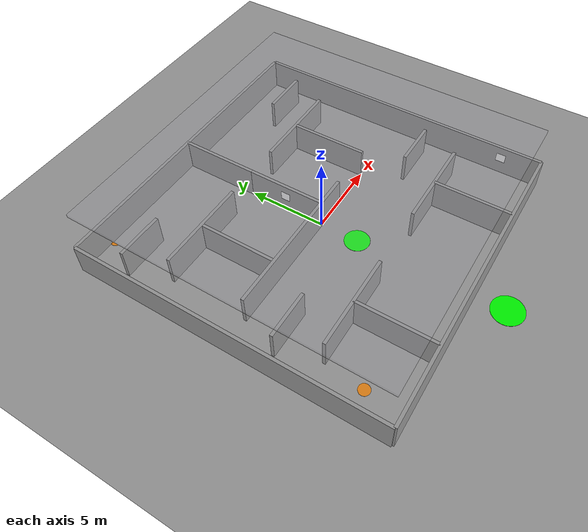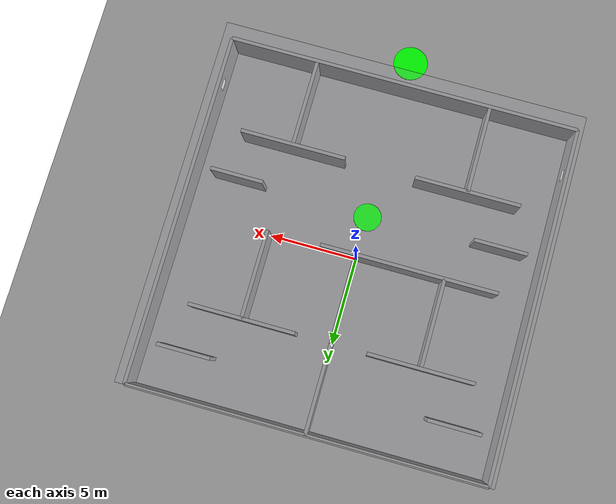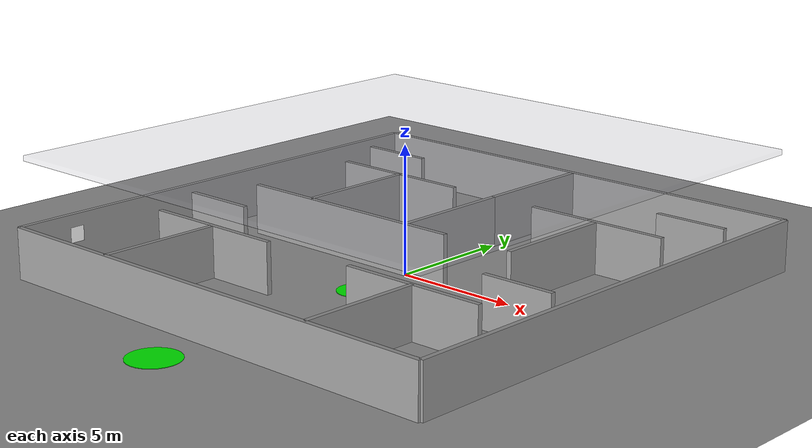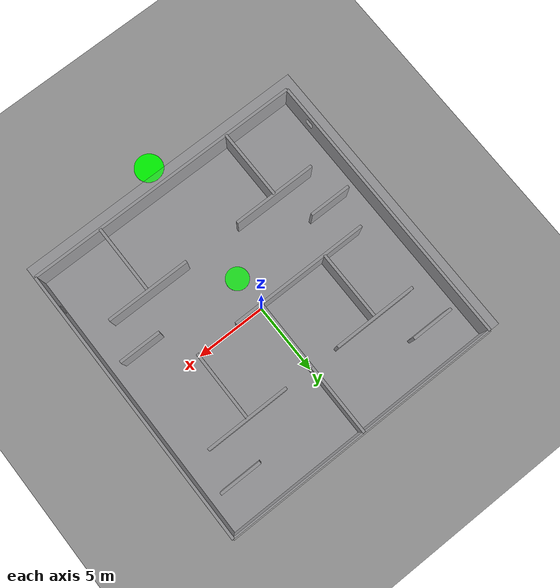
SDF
<?xml version="1.0"?>
<sdf version="1.8">
  <world name="maze">

    <physics type="ode">
      <max_step_size>0.004</max_step_size>
      <real_time_factor>1.0</real_time_factor>
      <real_time_update_rate>250</real_time_update_rate>
    </physics>

    <plugin filename="gz-sim-air-pressure-system" name="gz::sim::systems::AirPressure"/>
    <plugin filename="gz-sim-magnetometer-system" name="gz::sim::systems::Magnetometer"/>
    <plugin filename="gz-sim-physics-system" name="gz::sim::systems::Physics"/>
    <plugin filename="gz-sim-user-commands-system" name="gz::sim::systems::UserCommands"/>
    <plugin filename="gz-sim-scene-broadcaster-system" name="gz::sim::systems::SceneBroadcaster"/>
    <plugin filename="gz-sim-sensors-system" name="gz::sim::systems::Sensors">
      <render_engine>ogre2</render_engine>
    </plugin>
    <plugin filename="gz-sim-imu-system" name="gz::sim::systems::Imu"/>
    <plugin filename="gz-sim-navsat-system" name="gz::sim::systems::NavSat"/>
    <plugin filename="gz-sim-contact-system" name="gz::sim::systems::Contact"/>

    <spherical_coordinates>
  	<surface_model>EARTH_WGS84</surface_model>
  	<world_frame_orientation>ENU</world_frame_orientation>
  	<latitude_deg>40.8518</latitude_deg>  <longitude_deg>14.2681</longitude_deg>
  	<elevation>0</elevation>
  	<heading_deg>0</heading_deg>
    </spherical_coordinates>

    <light type="directional" name="sun">
      <cast_shadows>false</cast_shadows>
      <pose>0 0 10 0 0 0</pose>
      <diffuse>0.8 0.8 0.8 1</diffuse>
      <specular>0.2 0.2 0.2 1</specular>
      <direction>-0.5 0.1 -0.9</direction>
    </light>

    <model name="ground_plane">
      <static>true</static>
      <link name="link">
        <collision name="collision">
          <geometry><plane><normal>0 0 1</normal><size>100 100</size></plane></geometry>
        </collision>
        <visual name="visual">
          <geometry><plane><normal>0 0 1</normal><size>100 100</size></plane></geometry>
          <material>
            <ambient>0.6 0.6 0.6 1</ambient>
            <diffuse>0.6 0.6 0.6 1</diffuse>
          </material>
        </visual>
      </link>
    </model>

    <model name="maze_ceiling">
      <static>true</static>
      <pose>0 0 4.6 0 0 0</pose>
      <link name="link">
        <collision name="collision">
          <geometry>
            <box><size>19.6 19.6 0.2</size></box>
          </geometry>
        </collision>
        <visual name="visual">
          <geometry>
            <box><size>19.6 19.6 0.2</size></box>
          </geometry>
          <material>
            <ambient>0.55 0.55 0.60 0.18</ambient>
            <diffuse>0.65 0.65 0.70 0.18</diffuse>
          </material>
          <transparency>0.82</transparency>
        </visual>
      </link>
    </model>

    <model name="wall_north">
      <static>true</static>
      <pose>0 10 1 0 0 0</pose>
      <link name="link">
        <collision name="collision">
          <geometry>
            <box><size>20 0.2 2</size></box>
          </geometry>
        </collision>
        <visual name="visual">
          <geometry>
            <box><size>20 0.2 2</size></box>
          </geometry>
          <material>
            <ambient>0.5 0.5 0.5 1</ambient>
            <diffuse>0.6 0.6 0.6 1</diffuse>
          </material>
        </visual>
      </link>
    </model>

    <!-- South wall (with entrance gap at center) -->
    <model name="wall_south">
      <static>true</static>
      <pose>0 -10 1 0 0 0</pose>
      <link name="link">
        <collision name="collision">
          <geometry>
            <box><size>20 0.2 2</size></box>
          </geometry>
        </collision>
        <visual name="visual">
          <geometry>
            <box><size>20 0.2 2</size></box>
          </geometry>
          <material>
            <ambient>0.5 0.5 0.5 1</ambient>
            <diffuse>0.6 0.6 0.6 1</diffuse>
          </material>
        </visual>
      </link>
    </model>

    <!-- East wall -->
    <model name="wall_east">
      <static>true</static>
      <pose>10 0 1 0 0 0</pose>
      <link name="link">
        <collision name="collision">
          <geometry>
            <box><size>0.2 20 2</size></box>
          </geometry>
        </collision>
        <visual name="visual">
          <geometry>
            <box><size>0.2 20 2</size></box>
          </geometry>
          <material>
            <ambient>0.5 0.5 0.5 1</ambient>
            <diffuse>0.6 0.6 0.6 1</diffuse>
          </material>
        </visual>
      </link>
    </model>

    <!-- West wall -->
    <model name="wall_west">
      <static>true</static>
      <pose>-10 0 1 0 0 0</pose>
      <link name="link">
        <collision name="collision">
          <geometry>
            <box><size>0.2 20 2</size></box>
          </geometry>
        </collision>
        <visual name="visual">
          <geometry>
            <box><size>0.2 20 2</size></box>
          </geometry>
          <material>
            <ambient>0.5 0.5 0.5 1</ambient>
            <diffuse>0.6 0.6 0.6 1</diffuse>
          </material>
        </visual>
      </link>
    </model>

    <model name="wall_h1">
      <static>true</static>
      <pose>-5 -5 1 0 0 0</pose>
      <link name="link">
        <collision name="collision">
          <geometry>
            <box><size>6 0.2 2</size></box>
          </geometry>
        </collision>
        <visual name="visual">
          <geometry>
            <box><size>6 0.2 2</size></box>
          </geometry>
          <material>
            <ambient>0.5 0.5 0.5 1</ambient>
            <diffuse>0.6 0.6 0.6 1</diffuse>
          </material>
        </visual>
      </link>
    </model>

    <model name="wall_h2">
      <static>true</static>
      <pose>5 -5 1 0 0 0</pose>
      <link name="link">
        <collision name="collision">
          <geometry>
            <box><size>6 0.2 2</size></box>
          </geometry>
        </collision>
        <visual name="visual">
          <geometry>
            <box><size>6 0.2 2</size></box>
          </geometry>
          <material>
            <ambient>0.5 0.5 0.5 1</ambient>
            <diffuse>0.6 0.6 0.6 1</diffuse>
          </material>
        </visual>
      </link>
    </model>

    <model name="wall_h3">
      <static>true</static>
      <pose>-3 0 1 0 0 0</pose>
      <link name="link">
        <collision name="collision">
          <geometry>
            <box><size>10 0.2 2</size></box>
          </geometry>
        </collision>
        <visual name="visual">
          <geometry>
            <box><size>10 0.2 2</size></box>
          </geometry>
          <material>
            <ambient>0.5 0.5 0.5 1</ambient>
            <diffuse>0.6 0.6 0.6 1</diffuse>
          </material>
        </visual>
      </link>
    </model>

    <model name="wall_h4">
      <static>true</static>
      <pose>5 5 1 0 0 0</pose>
      <link name="link">
        <collision name="collision">
          <geometry>
            <box><size>6 0.2 2</size></box>
          </geometry>
        </collision>
        <visual name="visual">
          <geometry>
            <box><size>6 0.2 2</size></box>
          </geometry>
          <material>
            <ambient>0.5 0.5 0.5 1</ambient>
            <diffuse>0.6 0.6 0.6 1</diffuse>
          </material>
        </visual>
      </link>
    </model>

    <model name="wall_h5">
      <static>true</static>
      <pose>-5 5 1 0 0 0</pose>
      <link name="link">
        <collision name="collision">
          <geometry>
            <box><size>6 0.2 2</size></box>
          </geometry>
        </collision>
        <visual name="visual">
          <geometry>
            <box><size>6 0.2 2</size></box>
          </geometry>
          <material>
            <ambient>0.5 0.5 0.5 1</ambient>
            <diffuse>0.6 0.6 0.6 1</diffuse>
          </material>
        </visual>
      </link>
    </model>

    <!-- Vertical internal walls -->
    <model name="wall_v1">
      <static>true</static>
      <pose>-5 -7.5 1 0 0 0</pose>
      <link name="link">
        <collision name="collision">
          <geometry>
            <box><size>0.2 5 2</size></box>
          </geometry>
        </collision>
        <visual name="visual">
          <geometry>
            <box><size>0.2 5 2</size></box>
          </geometry>
          <material>
            <ambient>0.5 0.5 0.5 1</ambient>
            <diffuse>0.6 0.6 0.6 1</diffuse>
          </material>
        </visual>
      </link>
    </model>

    <model name="wall_v2">
      <static>true</static>
      <pose>5 -7.5 1 0 0 0</pose>
      <link name="link">
        <collision name="collision">
          <geometry>
            <box><size>0.2 5 2</size></box>
          </geometry>
        </collision>
        <visual name="visual">
          <geometry>
            <box><size>0.2 5 2</size></box>
          </geometry>
          <material>
            <ambient>0.5 0.5 0.5 1</ambient>
            <diffuse>0.6 0.6 0.6 1</diffuse>
          </material>
        </visual>
      </link>
    </model>

    <model name="wall_v3">
      <static>true</static>
      <pose>0 2.5 1 0 0 0</pose>
      <link name="link">
        <collision name="collision">
          <geometry>
            <box><size>0.2 5 2</size></box>
          </geometry>
        </collision>
        <visual name="visual">
          <geometry>
            <box><size>0.2 5 2</size></box>
          </geometry>
          <material>
            <ambient>0.5 0.5 0.5 1</ambient>
            <diffuse>0.6 0.6 0.6 1</diffuse>
          </material>
        </visual>
      </link>
    </model>

    <model name="wall_v4">
      <static>true</static>
      <pose>-5 2.5 1 0 0 0</pose>
      <link name="link">
        <collision name="collision">
          <geometry>
            <box><size>0.2 5 2</size></box>
          </geometry>
        </collision>
        <visual name="visual">
          <geometry>
            <box><size>0.2 5 2</size></box>
          </geometry>
          <material>
            <ambient>0.5 0.5 0.5 1</ambient>
            <diffuse>0.6 0.6 0.6 1</diffuse>
          </material>
        </visual>
      </link>
    </model>

    <model name="wall_v5">
      <static>true</static>
      <pose>5 2.5 1 0 0 0</pose>
      <link name="link">
        <collision name="collision">
          <geometry>
            <box><size>0.2 5 2</size></box>
          </geometry>
        </collision>
        <visual name="visual">
          <geometry>
            <box><size>0.2 5 2</size></box>
          </geometry>
          <material>
            <ambient>0.5 0.5 0.5 1</ambient>
            <diffuse>0.6 0.6 0.6 1</diffuse>
          </material>
        </visual>
      </link>
    </model>

    <model name="wall_v6">
      <static>true</static>
      <pose>0 7.5 1 0 0 0</pose>
      <link name="link">
        <collision name="collision">
          <geometry>
            <box><size>0.2 5 2</size></box>
          </geometry>
        </collision>
        <visual name="visual">
          <geometry>
            <box><size>0.2 5 2</size></box>
          </geometry>
          <material>
            <ambient>0.5 0.5 0.5 1</ambient>
            <diffuse>0.6 0.6 0.6 1</diffuse>
          </material>
        </visual>
      </link>
    </model>

    <!-- Dead-end walls for more complexity -->
    <model name="wall_deadend1">
      <static>true</static>
      <pose>-7.5 -2.5 1 0 0 0</pose>
      <link name="link">
        <collision name="collision">
          <geometry>
            <box><size>3 0.2 2</size></box>
          </geometry>
        </collision>
        <visual name="visual">
          <geometry>
            <box><size>3 0.2 2</size></box>
          </geometry>
          <material>
            <ambient>0.5 0.5 0.5 1</ambient>
            <diffuse>0.6 0.6 0.6 1</diffuse>
          </material>
        </visual>
      </link>
    </model>

    <model name="wall_deadend2">
      <static>true</static>
      <pose>7.5 -2.5 1 0 0 0</pose>
      <link name="link">
        <collision name="collision">
          <geometry>
            <box><size>3 0.2 2</size></box>
          </geometry>
        </collision>
        <visual name="visual">
          <geometry>
            <box><size>3 0.2 2</size></box>
          </geometry>
          <material>
            <ambient>0.5 0.5 0.5 1</ambient>
            <diffuse>0.6 0.6 0.6 1</diffuse>
          </material>
        </visual>
      </link>
    </model>

    <model name="wall_deadend3">
      <static>true</static>
      <pose>-7.5 7.5 1 0 0 0</pose>
      <link name="link">
        <collision name="collision">
          <geometry>
            <box><size>3 0.2 2</size></box>
          </geometry>
        </collision>
        <visual name="visual">
          <geometry>
            <box><size>3 0.2 2</size></box>
          </geometry>
          <material>
            <ambient>0.5 0.5 0.5 1</ambient>
            <diffuse>0.6 0.6 0.6 1</diffuse>
          </material>
        </visual>
      </link>
    </model>

    <model name="wall_deadend4">
      <static>true</static>
      <pose>7.5 7.5 1 0 0 0</pose>
      <link name="link">
        <collision name="collision">
          <geometry>
            <box><size>3 0.2 2</size></box>
          </geometry>
        </collision>
        <visual name="visual">
          <geometry>
            <box><size>3 0.2 2</size></box>
          </geometry>
          <material>
            <ambient>0.5 0.5 0.5 1</ambient>
            <diffuse>0.6 0.6 0.6 1</diffuse>
          </material>
        </visual>
      </link>
    </model>

    <!-- ==================== SAFETY POINTS ==================== -->
    <!-- Green circles marking safe areas for victim dropoff -->

    <model name="safety_point_entrance">
      <static>true</static>
      <pose>0 -12 0.01 0 0 0</pose>
      <link name="link">
        <visual name="visual">
          <geometry>
            <cylinder>
              <radius>1.0</radius>
              <length>0.02</length>
            </cylinder>
          </geometry>
          <material>
            <ambient>0 0.8 0 1</ambient>
            <diffuse>0 1 0 1</diffuse>
          </material>
        </visual>
      </link>
    </model>

    <model name="safety_point_center">
      <static>true</static>
      <pose>0 -2.5 0.01 0 0 0</pose>
      <link name="link">
        <visual name="visual">
          <geometry>
            <cylinder>
              <radius>0.8</radius>
              <length>0.02</length>
            </cylinder>
          </geometry>
          <material>
            <ambient>0 0.8 0 1</ambient>
            <diffuse>0 1 0 1</diffuse>
          </material>
        </visual>
      </link>
    </model>

    <!-- ==================== INTEREST POINTS ==================== -->
    <!-- Orange floor markers aligned with the simple full-stack ArUco scan points. -->

    <model name="interest_point_tag0_w">
      <static>true</static>
      <pose>-8.2 -7.5 0.02 0 0 0</pose>
      <link name="link">
        <visual name="visual">
          <geometry>
            <cylinder>
              <radius>0.35</radius>
              <length>0.04</length>
            </cylinder>
          </geometry>
          <material>
            <ambient>0.95 0.45 0.0 0.75</ambient>
            <diffuse>1.0 0.55 0.05 0.85</diffuse>
          </material>
        </visual>
      </link>
    </model>

    <model name="interest_point_tag1_e">
      <static>true</static>
      <pose>8.2 -7.5 0.02 0 0 0</pose>
      <link name="link">
        <visual name="visual">
          <geometry>
            <cylinder>
              <radius>0.35</radius>
              <length>0.04</length>
            </cylinder>
          </geometry>
          <material>
            <ambient>0.95 0.45 0.0 0.75</ambient>
            <diffuse>1.0 0.55 0.05 0.85</diffuse>
          </material>
        </visual>
      </link>
    </model>

    <model name="interest_point_tag2_nw">
      <static>true</static>
      <pose>-7.5 9.8 0.02 0 0 0</pose>
      <link name="link">
        <visual name="visual">
          <geometry>
            <cylinder>
              <radius>0.35</radius>
              <length>0.04</length>
            </cylinder>
          </geometry>
          <material>
            <ambient>0.95 0.45 0.0 0.75</ambient>
            <diffuse>1.0 0.55 0.05 0.85</diffuse>
          </material>
        </visual>
      </link>
    </model>

    <model name="interest_point_tag3_ne">
      <static>true</static>
      <pose>7.5 9.8 0.02 0 0 0</pose>
      <link name="link">
        <visual name="visual">
          <geometry>
            <cylinder>
              <radius>0.35</radius>
              <length>0.04</length>
            </cylinder>
          </geometry>
          <material>
            <ambient>0.95 0.45 0.0 0.75</ambient>
            <diffuse>1.0 0.55 0.05 0.85</diffuse>
          </material>
        </visual>
      </link>
    </model>

    <model name="interest_point_tag4_w">
      <static>true</static>
      <pose>-2.6 2.5 0.02 0 0 0</pose>
      <link name="link">
        <visual name="visual">
          <geometry>
            <cylinder>
              <radius>0.35</radius>
              <length>0.04</length>
            </cylinder>
          </geometry>
          <material>
            <ambient>0.95 0.45 0.0 0.75</ambient>
            <diffuse>1.0 0.55 0.05 0.85</diffuse>
          </material>
        </visual>
      </link>
    </model>

<!-- Victim 0: Southwest room (RED debug) -->
<model name="victim_0">
  <static>true</static>
  <pose>-9.89 -7.5 1.2 0 1.5708 0</pose>
  <link name="marker_0">
    <visual name="visual">
      <geometry>
        <plane><size>0.6 0.6</size></plane>
      </geometry>
      <material>
        <diffuse>1 1 1 1</diffuse>
        <pbr>
          <metal>
            <albedo_map>file:///home/telemaque/ros_ws/drone/src/drone_bringup/models/aruco_marker/materials/textures/marker_0.png</albedo_map>
          </metal>
        </pbr>
      </material>
    </visual>
    <pose>0 0 0 0 0 0</pose>
  </link>
</model>

<model name="victim_1">
  <static>true</static>
  <pose>9.89 -7.5 1.2 0 1.5708 3.14159</pose>
  <link name="marker_1">
    <visual name="visual">
      <geometry>
        <plane><size>0.6 0.6</size></plane>
      </geometry>
      <material>
        <diffuse>1 1 1 1</diffuse>
        <pbr>
          <metal>
            <albedo_map>file:///home/telemaque/ros_ws/drone/src/drone_bringup/models/aruco_marker/materials/textures/marker_1.png</albedo_map>
          </metal>
        </pbr>
      </material>
    </visual>
    <pose>0 0 0 0 0 0</pose>
  </link>
</model>

<model name="victim_2">
  <static>true</static>
  <pose>-7.5 7.61 1.2 0 1.5708 1.5708</pose>
  <link name="marker_2">
    <visual name="visual">
      <geometry>
        <plane><size>0.6 0.6</size></plane>
      </geometry>
      <material>
        <diffuse>1 1 1 1</diffuse>
        <pbr>
          <metal>
            <albedo_map>file:///home/telemaque/ros_ws/drone/src/drone_bringup/models/aruco_marker/materials/textures/marker_2.png</albedo_map>
          </metal>
        </pbr>
      </material>
    </visual>
    <pose>0 0 0 0 0 0</pose>
  </link>
</model>

<model name="victim_3">
  <static>true</static>
  <pose>7.5 7.61 1.2 0 1.5708 1.5708</pose>
  <link name="marker_3">
    <visual name="visual">
      <geometry>
        <plane><size>0.6 0.6</size></plane>
      </geometry>
      <material>
        <diffuse>1 1 1 1</diffuse>
        <pbr>
          <metal>
            <albedo_map>file:///home/telemaque/ros_ws/drone/src/drone_bringup/models/aruco_marker/materials/textures/marker_3.png</albedo_map>
          </metal>
        </pbr>
      </material>
    </visual>
    <pose>0 0 0 0 0 0</pose>
  </link>
</model>

<model name="victim_4">
  <static>true</static>
  <pose>-0.11 2.5 1.2 0 -1.5708 0</pose>
  <link name="marker_4">
    <visual name="visual">
      <geometry>
        <plane><size>0.6 0.6</size></plane>
      </geometry>
      <material>
        <diffuse>1 1 1 1</diffuse>
        <pbr>
          <metal>
            <albedo_map>file:///home/telemaque/ros_ws/drone/src/drone_bringup/models/aruco_marker/materials/textures/marker_4.png</albedo_map>
          </metal>
        </pbr>
      </material>
    </visual>
    <pose>0 0 0 0 0 0</pose>
  </link>
</model>

  </world>
</sdf>
